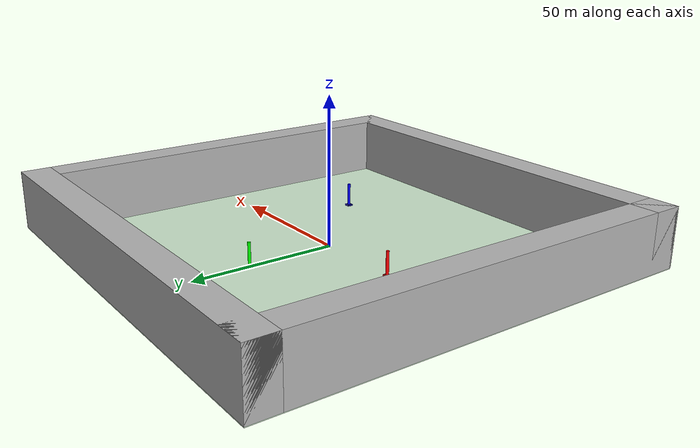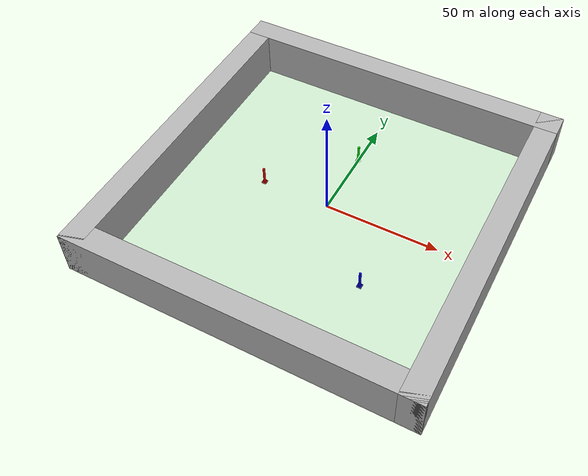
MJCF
<mujoco>
  <option timestep="0.005"/>
    <worldbody>
    <!-- Mặt sàn -->
    <geom name="ground" type="plane" size="75 75 0.1" pos="0 0 0" rgba="0.8 0.9 0.8 1"/>

    <!-- Tường bao quanh -->
    <geom name="wall_north" type="box" size="75 5 10" pos="0 70 10" rgba="0.7 0.7 0.7 1"/>
    <geom name="wall_south" type="box" size="75 5 10" pos="0 -70 10" rgba="0.7 0.7 0.7 1"/>
    <geom name="wall_east"  type="box" size="5 75 10" pos="70 0 10" rgba="0.7 0.7 0.7 1"/>
    <geom name="wall_west"  type="box" size="5 75 10" pos="-70 0 10" rgba="0.7 0.7 0.7 1"/>

    <!-- Bệ đỡ màu đỏ cao 5m -->
    <body name="red_pedestal" pos="-30 0 4">
      <geom type="cylinder" size="0.5 4" pos="0 0 0.25" rgba="1 0 0 1"/>
      <geom type="box" size="1 1 0.25" pos="0 0 -3.75" rgba="0.5 0 0 1"/>
    </body>

    <!-- Bệ đỡ màu xanh lá cao 5m -->
    <body name="green_pedestal" pos="0 30 4">
      <geom type="cylinder" size="0.5 4" pos="0 0 0.25" rgba="0 1 0 1"/>
      <geom type="box" size="1 1 0.25" pos="0 0 -3.75" rgba="0 0.5 0 1"/>
    </body>

    <!-- Bệ đỡ màu xanh dương cao 5m -->
    <body name="blue_pedestal" pos="30 -30 4">
      <geom type="cylinder" size="0.5 4" pos="0 0 0.25" rgba="0 0 1 1"/>
      <geom type="box" size="1 1 0.25" pos="0 0 -3.75" rgba="0 0 0.5 1"/>
    </body>

    <!-- Hệ thống chiếu sáng -->
    <light directional="true" diffuse="1.2 1.2 1.2" specular="0.4 0.4 0.4" pos="0 0 50" dir="0 0 -1"/>
    <light directional="true" diffuse="0.7 0.7 0.7" specular="0.2 0.2 0.2" pos="25 25 25" dir="-1 -1 -1"/>
  </worldbody>
</mujoco>
